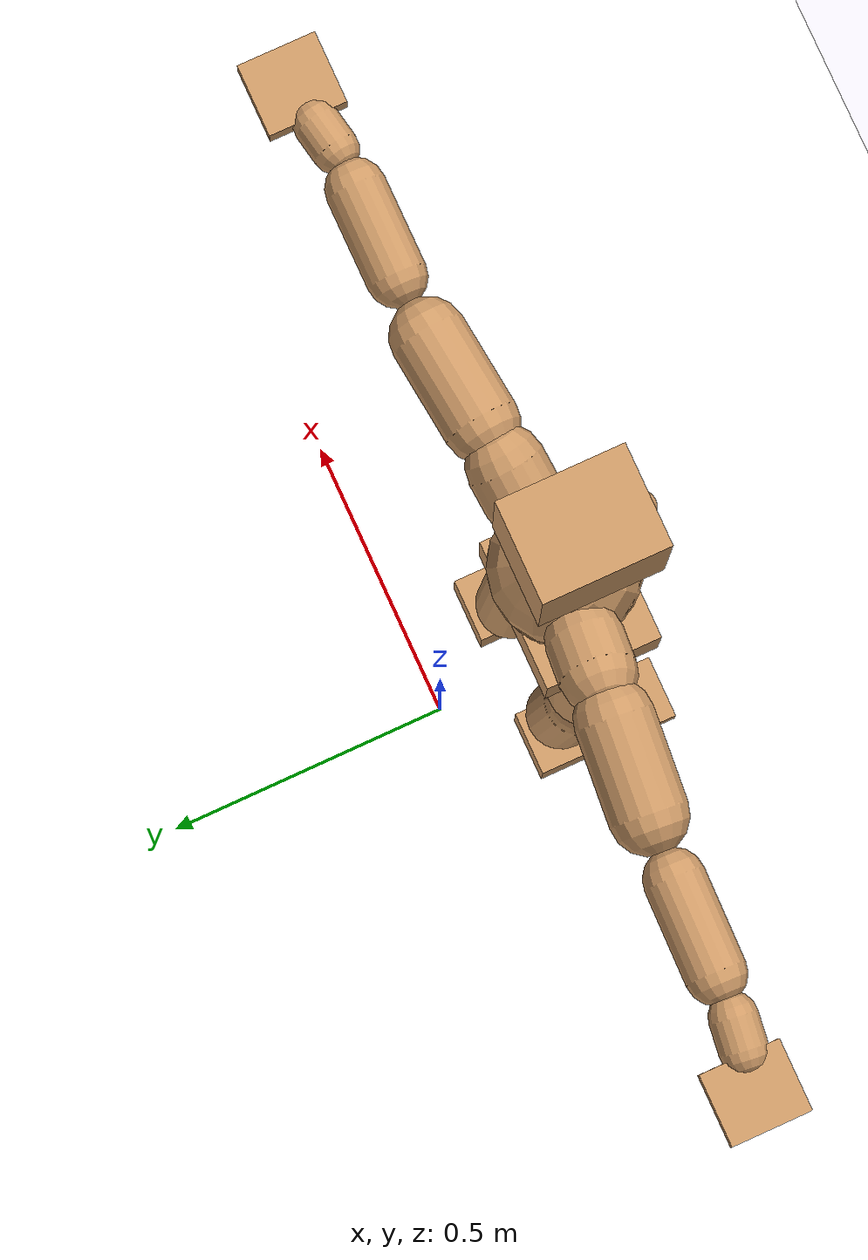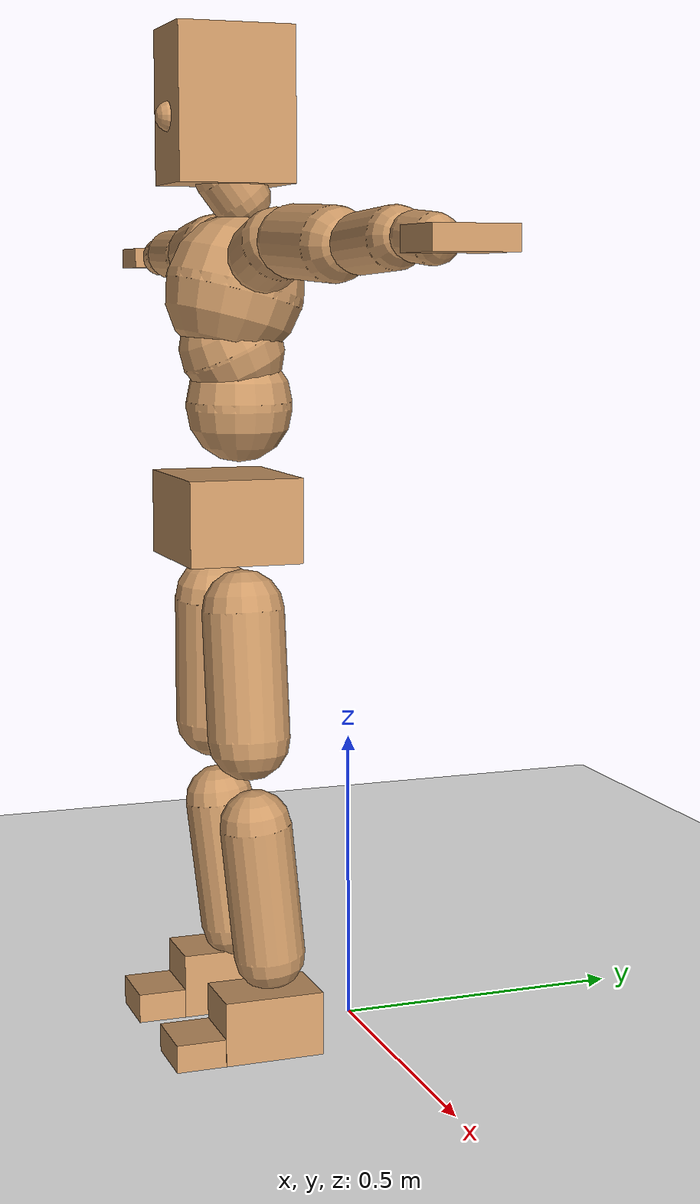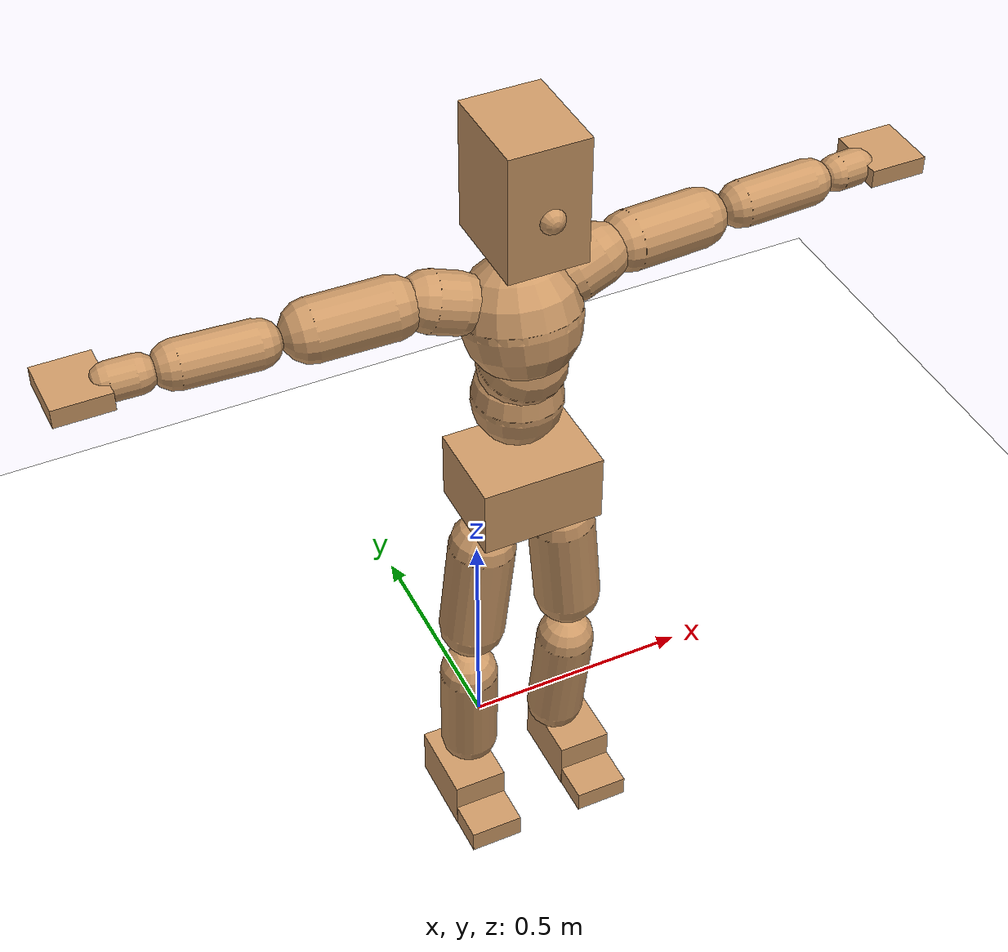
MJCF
<mujoco model="humanoid">
  <option integrator="implicitfast" />

  <visual>
    <global offwidth="1280" offheight="960" />
    <headlight active="1" ambient="0.34 0.34 0.34" diffuse="0.5 0.5 0.5" />
  </visual>

  <default>
    <joint damping="2" stiffness="2" armature="0.01" limited="true" solimplimit="0 .99 .01" />
    <geom condim="1" friction="0.7 0.005 0.0001" solimp=".99 .99 .003" solref="0.015 1" margin="0.001" rgba="0.8 0.6 .4 1" />
    <default class="smplcontact">
      <geom condim="3" friction="1. 0.005 0.0001" solref="0.015 1" solimp="0.98 0.98 0.001" priority="1" />
    </default>
    <default class="stiff_medium">
      <joint stiffness="10" />
    </default>
    <default class="stiff_medium_higher">
      <joint stiffness="50" />
    </default>
    <default class="stiff_high">
      <joint stiffness="100" />
    </default>
  </default>

  <asset>
    <texture type="skybox" builtin="gradient" rgb1="0.99 0.99 0.99" rgb2="0.608 0.828 0.892" width="100" />
    <texture builtin="flat" height="1278" mark="cross" markrgb="1 1 1" name="texgeom" random="0.01" rgb1="0.8 0.6 0.4" rgb2="0.8 0.6 0.4" type="cube" width="127" />
    <texture name="texplane" type="2d" builtin="checker" markrgb="1 1 1" rgb1="0.756 0.772 0.76" rgb2="0.6 0.6 0.6" width="100" height="100" />
    <material name="MatPlane" reflectance="0.5" texture="texplane" texrepeat="1 1" texuniform="true" />
    <material name="geom" texture="texgeom" texuniform="true" />
  </asset>

  <worldbody>
    <light name="tracking_light" pos="0 0 7" dir="0 0 -1" directional="true" cutoff="100" exponent="1" diffuse="1 1 1" specular="0.1 0.1 0.1" mode="trackcom" />
    <camera name="back" pos="0 3 2.4" xyaxes="-1 0 0 0 -1 2" mode="trackcom" />
    <camera name="side" pos="-3 0 2.4" xyaxes="0 -1 0 1 0 2" mode="trackcom" />
    <camera name="front_side" pos="-2.8 -2.8 0.8" xyaxes="0.5 -0.5 0 0.1 0.1 1" mode="trackcom" />
    <geom condim="3" name="floor" pos="0 0 0" rgba="1 1 1 1" size="100 100 .2" type="plane" material="MatPlane" />
    <body name="Pelvis" pos="-0.0018 -0.2233 0.907381" euler="90 0 0">
      <site name="Pelvis" size="0.01" />
      <freejoint name="Pelvis" />
      <geom type="box" pos="0 -0.0119134 -0.0063646" size="0.123705 0.0710864 0.0960476" quat="1.0000 0.0000 0.0000 0.0000" density="3165.830099" name="Pelvis" />
      <body name="L_Hip" pos="0.0804254 -0.0899903 -0.00786896">
        <joint name="L_Hip_x" type="hinge" pos="0 0 0" axis="1 0 0" stiffness="10" range="-160.0 22.92" class="stiff_medium" damping="15" />
        <joint name="L_Hip_y" type="hinge" pos="0 0 0" axis="0 1 0" stiffness="10" range="-70.0 70.0" class="stiff_medium" damping="10" />
        <joint name="L_Hip_z" type="hinge" pos="0 0 0" axis="0 0 1" stiffness="10" range="-28.65 90.0" class="stiff_medium" damping="10" />
        <geom type="capsule" density="2040.816327" fromto="0.00657484 -0.0713337 -0.000856138 0.026073 -0.285528 -0.00342419" size="0.068757" name="L_Hip" />
        <body name="L_Knee" pos="0.0326479 -0.356862 -0.00428033">
          <joint name="L_Knee_x" type="hinge" pos="0 0 0" axis="1 0 0" range="-5.16 171.89" damping="8" />
          <joint name="L_Knee_y" type="hinge" pos="0 0 0" axis="0 1 0" range="-4.58 6.88" damping="8" />
          <joint name="L_Knee_z" type="hinge" pos="0 0 0" axis="0 0 1" range="-6.88 4.58" damping="8" />
          <geom type="capsule" density="1234.567901" fromto="-0.00256254 -0.0757114 -0.00826387 -0.0103618 -0.302841 -0.0332786" size="0.0604838" name="L_Knee" />
          <body name="L_Ankle" pos="-0.0129243 -0.378553 -0.0415425">
            <joint name="L_Ankle_x" type="hinge" pos="0 0 0" axis="1 0 0" range="-45.84 45.84" class="stiff_medium" damping="6" />
            <joint name="L_Ankle_y" type="hinge" pos="0 0 0" axis="0 1 0" range="-74.48 22.92" class="stiff_medium" damping="3" />
            <joint name="L_Ankle_z" type="hinge" pos="0 0 0" axis="0 0 1" range="-4.58 4.58" class="stiff_medium" damping="6" />
            <geom type="box" pos="0.0269628 -0.0276571 0.0239458" size="0.0558928 0.0536941 0.0841073" quat="1.0000 0.0000 0.0000 0.0000" density="449.071558" name="L_Ankle" class="smplcontact" />
            <body name="L_Toe" pos="0.0305501 -0.0645718 0.118047">
              <joint name="L_Toe_x" type="hinge" pos="0 0 0" axis="1 0 0" range="-91.67 22.92" />
              <joint name="L_Toe_y" type="hinge" pos="0 0 0" axis="0 1 0" range="-4.58 4.58" />
              <joint name="L_Toe_z" type="hinge" pos="0 0 0" axis="0 0 1" range="-4.58 4.58" />
              <geom type="box" pos="-0.0034716 0.0063646 0.0245395" size="0.0553142 0.023144 0.0490791" quat="1.0000 0.0000 0.0000 0.0000" density="423.206892" name="L_Toe" class="smplcontact" />
            </body>
          </body>
        </body>
      </body>
      <body name="R_Hip" pos="-0.0783424 -0.0891041 -0.00497596">
        <joint name="R_Hip_x" type="hinge" pos="0 0 0" axis="1 0 0" stiffness="10" range="-160.0 22.92" class="stiff_medium" damping="15" />
        <joint name="R_Hip_y" type="hinge" pos="0 0 0" axis="0 1 0" stiffness="10" range="-70.0 70.0" class="stiff_medium" damping="10" />
        <joint name="R_Hip_z" type="hinge" pos="0 0 0" axis="0 0 1" stiffness="10" range="-90.0 28.65" class="stiff_medium" damping="10" />
        <geom type="capsule" density="2040.816327" fromto="-0.00733526 -0.0727602 -0.0017177 -0.0291161 -0.29114 -0.00675869" size="0.0677508" name="R_Hip" />
        <body name="R_Knee" pos="-0.0364514 -0.3639 -0.00847638">
          <joint name="R_Knee_x" type="hinge" pos="0 0 0" axis="1 0 0" range="-5.16 171.89" damping="8" />
          <joint name="R_Knee_y" type="hinge" pos="0 0 0" axis="0 1 0" range="-6.88 4.58" damping="8" />
          <joint name="R_Knee_z" type="hinge" pos="0 0 0" axis="0 0 1" range="-4.58 6.88" damping="8" />
          <geom type="capsule" density="1234.567901" fromto="0.00305446 -0.0758036 -0.00809498 0.0119951 -0.303124 -0.0321586" size="0.0604838" name="R_Knee" />
          <body name="R_Ankle" pos="0.0150496 -0.378927 -0.0402536">
            <joint name="R_Ankle_x" type="hinge" pos="0 0 0" axis="1 0 0" range="-45.84 45.84" class="stiff_medium" damping="6" />
            <joint name="R_Ankle_y" type="hinge" pos="0 0 0" axis="0 1 0" range="-22.92 74.48" class="stiff_medium" damping="3" />
            <joint name="R_Ankle_z" type="hinge" pos="0 0 0" axis="0 0 1" range="-4.58 4.58" class="stiff_medium" damping="6" />
            <geom type="box" pos="-0.0245326 -0.0201353 0.0253311" size="0.0558928 0.0553142 0.0855916" quat="1.0000 0.0000 0.0000 0.0000" density="434.700981" name="R_Ankle" class="smplcontact" />
            <body name="R_Toe" pos="-0.0293929 -0.0556613 0.122005">
              <joint name="R_Toe_x" type="hinge" pos="0 0 0" axis="1 0 0" range="-91.67 22.92" />
              <joint name="R_Toe_y" type="hinge" pos="0 0 0" axis="0 1 0" range="-4.58 4.58" />
              <joint name="R_Toe_z" type="hinge" pos="0 0 0" axis="0 0 1" range="-4.58 4.58" />
              <geom type="box" pos="0.00486024 0.0052074 0.0224616" size="0.0554299 0.0249955 0.0487822" quat="1.0000 0.0000 0.0000 0.0000" density="407.384095" name="R_Toe" class="smplcontact" />
            </body>
          </body>
        </body>
      </body>
      <body name="Torso" pos="-0.002893 0.107319 -0.0308972">
        <joint name="Torso_x" type="hinge" pos="0 0 0" axis="1 0 0" range="-25.78 57.3" class="stiff_medium" damping="15" />
        <joint name="Torso_y" type="hinge" pos="0 0 0" axis="0 1 0" range="-57.3 57.3" class="stiff_high" damping="20" />
        <joint name="Torso_z" type="hinge" pos="0 0 0" axis="0 0 1" range="-34.38 34.38" class="stiff_high" damping="20" />
        <geom type="capsule" density="2040.816327" fromto="0.0025105 0.0600102 0.0005021 0.00300402 0.0733352 0.000600804" size="0.0892194" name="Torso" />
        <body name="Spine" pos="0.00551388 0.133444 0.00110278">
          <joint name="Spine_x" type="hinge" pos="0 0 0" axis="1 0 0" stiffness="10" range="-25.78 57.3" class="stiff_medium" damping="15" />
          <joint name="Spine_y" type="hinge" pos="0 0 0" axis="0 1 0" stiffness="10" range="-57.3 57.3" class="stiff_high" damping="8" />
          <joint name="Spine_z" type="hinge" pos="0 0 0" axis="0 0 1" stiffness="20" range="-34.38 34.38" class="stiff_high" damping="12" />
          <geom type="capsule" density="2040.816327" fromto="0.000734723 0.0235097 0.0112134 0.000833427 0.028741 0.0137797" size="0.0875951" name="Spine" />
          <body name="Chest" pos="0.00156815 0.0522507 0.0249932">
            <joint name="Chest_x" type="hinge" pos="0 0 0" axis="1 0 0" stiffness="10" range="-25.78 57.3" class="stiff_medium" damping="15" />
            <joint name="Chest_y" type="hinge" pos="0 0 0" axis="0 1 0" stiffness="10" range="-57.3 57.3" class="stiff_high" damping="8" />
            <joint name="Chest_z" type="hinge" pos="0 0 0" axis="0 0 1" stiffness="20" range="-34.38 34.38" class="stiff_high" damping="12" />
            <geom type="capsule" density="2040.816327" fromto="-0.000966054 0.0673286 -0.0170246 -0.00106476 0.0822329 -0.020874" size="0.116252" name="Chest" />
            <body name="Neck" pos="-0.00300668 0.211643 -0.0403394">
              <joint name="Neck_x" type="hinge" pos="0 0 0" axis="1 0 0" range="-28.65 57.3" class="stiff_medium_higher" damping="10" />
              <joint name="Neck_y" type="hinge" pos="0 0 0" axis="0 1 0" range="-40.11 40.11" class="stiff_medium_higher" damping="10" />
              <joint name="Neck_z" type="hinge" pos="0 0 0" axis="0 0 1" range="-40.11 40.11" class="stiff_medium_higher" damping="10" />
              <geom type="capsule" density="1000" fromto="0.000983514 0.012861 0.0101956 0.00405096 0.0514514 0.0406722" size="0.0507068" name="Neck" />
              <body name="Head" pos="0.00515137 0.0643199 0.0507575">
                <joint name="Head_x" type="hinge" pos="0 0 0" axis="1 0 0" range="-28.65 57.3" class="stiff_medium_higher" damping="2" />
                <joint name="Head_y" type="hinge" pos="0 0 0" axis="0 1 0" range="-40.11 40.11" class="stiff_medium_higher" damping="2" />
                <joint name="Head_z" type="hinge" pos="0 0 0" axis="0 0 1" range="-40.11 40.11" class="stiff_medium_higher" damping="2" />
                <geom type="box" pos="-0.00544488 0.096616 -0.0150382" size="0.0785618 0.127277 0.0985264" quat="1.0000 0.0000 0.0000 0.0000" density="1018.069894" name="Head" />
                <geom type="capsule" name="nose" size="0.025928 0.012964" pos="0 0.0772046 0.06482" quat="1 0 0 0" mass="0" contype="0" conaffinity="0" />
              </body>
            </body>
            <body name="L_Thorax" pos="0.0915635 0.120096 -0.0341131">
              <joint name="L_Thorax_x" type="hinge" pos="0 0 0" axis="1 0 0" range="-10.89 4.58" class="stiff_medium_higher" damping="20" />
              <joint name="L_Thorax_y" type="hinge" pos="0 0 0" axis="0 1 0" range="-28.65 17.19" class="stiff_medium_higher" damping="20" />
              <joint name="L_Thorax_z" type="hinge" pos="0 0 0" axis="0 0 1" range="-31.51 40.11" class="stiff_medium_higher" damping="20" />
              <geom type="capsule" density="1000" fromto="0.017872 0.00599005 -0.0017733 0.0714894 0.0239607 -0.00697792" size="0.060139" name="L_Thorax" />
              <body name="L_Shoulder" pos="0.0893613 0.0299508 -0.00875122">
                <joint name="L_Shoulder_x" type="hinge" pos="0 0 0" axis="1 0 0" range="-97.4 97.4" class="stiff_medium" damping="6" />
                <joint name="L_Shoulder_y" type="hinge" pos="0 0 0" axis="0 1 0" range="-108.86 80.21" class="stiff_medium" damping="6" />
                <joint name="L_Shoulder_z" type="hinge" pos="0 0 0" axis="0 0 1" range="-97.4 85.94" class="stiff_medium" damping="6" />
                <geom type="capsule" density="1000" fromto="0.0501236 -0.00252258 -0.00531234 0.200593 -0.00986254 -0.0212478" size="0.058695" name="L_Shoulder" />
                <body name="L_Elbow" pos="0.250716 -0.0123851 -0.0265601">
                  <joint name="L_Elbow_x" type="hinge" pos="0 0 0" axis="1 0 0" range="-17.19 4.58" damping="5" />
                  <joint name="L_Elbow_y" type="hinge" pos="0 0 0" axis="0 1 0" range="-180.0 17.19" damping="5" />
                  <joint name="L_Elbow_z" type="hinge" pos="0 0 0" axis="0 0 1" range="-100.84 4.58" damping="5" />
                  <geom type="capsule" density="1000" fromto="0.0480961 0.00173882 -0.000187559 0.192577 0.00695405 -0.000863608" size="0.0459797" name="L_Elbow" />
                  <body name="L_Wrist" pos="0.240673 0.00869287 -0.0011647">
                    <joint name="L_Wrist_x" type="hinge" pos="0 0 0" axis="1 0 0" range="-180.0 22.92" />
                    <joint name="L_Wrist_y" type="hinge" pos="0 0 0" axis="0 1 0" range="-17.19 17.19" />
                    <joint name="L_Wrist_z" type="hinge" pos="0 0 0" axis="0 0 1" range="-22.92 22.92" />
                    <geom type="capsule" density="1000" fromto="0.0162257 -0.00153966 -0.00289745 0.0649012 -0.006272 -0.0115895" size="0.0361025" name="L_Wrist" class="smplcontact" />
                    <body name="L_Hand" pos="0.0811282 -0.00792531 -0.0143737">
                      <joint name="L_Hand_x" type="hinge" pos="0 0 0" axis="1 0 0" range="-17.19 17.19" />
                      <joint name="L_Hand_y" type="hinge" pos="0 0 0" axis="0 1 0" range="-51.57 51.57" />
                      <joint name="L_Hand_z" type="hinge" pos="0 0 0" axis="0 0 1" range="-91.67 91.67" />
                      <geom type="box" pos="0.0485396 0.0011572 -0.00671176" size="0.0575977 0.0182838 0.0622574" quat="1.0000 0.0000 0.0000 0.0000" density="400.552564" name="L_Hand" class="smplcontact" />
                    </body>
                  </body>
                </body>
              </body>
            </body>
            <body name="R_Thorax" pos="-0.0947653 0.116841 -0.0393623">
              <joint name="R_Thorax_x" type="hinge" pos="0 0 0" axis="1 0 0" range="-10.89 4.58" class="stiff_medium_higher" damping="20" />
              <joint name="R_Thorax_y" type="hinge" pos="0 0 0" axis="0 1 0" range="-17.19 28.65" class="stiff_medium_higher" damping="20" />
              <joint name="R_Thorax_z" type="hinge" pos="0 0 0" axis="0 0 1" range="-40.11 31.51" class="stiff_medium_higher" damping="20" />
              <geom type="capsule" density="1000" fromto="-0.018855 0.00638319 -0.00176191 -0.0754184 0.0255323 -0.00716293" size="0.0589847" name="R_Thorax" />
              <body name="R_Shoulder" pos="-0.0942681 0.0320291 -0.00892434">
                <joint name="R_Shoulder_x" type="hinge" pos="0 0 0" axis="1 0 0" range="-97.4 97.4" class="stiff_medium" damping="6" />
                <joint name="R_Shoulder_y" type="hinge" pos="0 0 0" axis="0 1 0" range="-80.21 108.86" class="stiff_medium" damping="6" />
                <joint name="R_Shoulder_z" type="hinge" pos="0 0 0" axis="0 0 1" range="-85.94 97.4" class="stiff_medium" damping="6" />
                <geom type="capsule" density="1000" fromto="-0.0489644 -0.00261381 -0.0041594 -0.196053 -0.0103401 -0.0165214" size="0.0602844" name="R_Shoulder" />
                <body name="R_Elbow" pos="-0.245019 -0.0128404 -0.0206809">
                  <joint name="R_Elbow_x" type="hinge" pos="0 0 0" axis="1 0 0" range="-17.19 4.58" damping="5" />
                  <joint name="R_Elbow_y" type="hinge" pos="0 0 0" axis="0 1 0" range="-17.19 180.0" damping="5" />
                  <joint name="R_Elbow_z" type="hinge" pos="0 0 0" axis="0 0 1" range="-4.58 100.84" damping="5" />
                  <geom type="capsule" density="1000" fromto="-0.0493512 0.00155621 -0.00106211 -0.197213 0.00599881 -0.0042492" size="0.0463202" name="R_Elbow" />
                  <body name="R_Wrist" pos="-0.246564 0.00755501 -0.00542483">
                    <joint name="R_Wrist_x" type="hinge" pos="0 0 0" axis="1 0 0" range="-180.0 22.92" />
                    <joint name="R_Wrist_y" type="hinge" pos="0 0 0" axis="0 1 0" range="-17.19 17.19" />
                    <joint name="R_Wrist_z" type="hinge" pos="0 0 0" axis="0 0 1" range="-22.92 22.92" />
                    <geom type="capsule" density="1000" fromto="-0.0163214 -0.00115367 -0.00203444 -0.0653832 -0.00472707 -0.0080223" size="0.0370108" name="R_Wrist" class="smplcontact" />
                    <body name="R_Hand" pos="-0.0817066 -0.0058809 -0.00994346">
                      <joint name="R_Hand_x" type="hinge" pos="0 0 0" axis="1 0 0" range="-17.19 17.19" />
                      <joint name="R_Hand_y" type="hinge" pos="0 0 0" axis="0 1 0" range="-51.57 51.57" />
                      <joint name="R_Hand_z" type="hinge" pos="0 0 0" axis="0 0 1" range="-91.67 91.67" />
                      <geom type="box" pos="-0.0454874 -0.00104148 -0.00914188" size="0.0560224 0.0189781 0.0631831" quat="1.0000 0.0000 0.0000 0.0000" density="403.679611" name="R_Hand" class="smplcontact" />
                    </body>
                  </body>
                </body>
              </body>
            </body>
          </body>
        </body>
      </body>
    </body>
  </worldbody>
  <actuator>
    <general name="L_Hip_x" joint="L_Hip_x" biastype="affine" gainprm="287.33006409732246" biasprm="-215.3247604770444 -180 -2.0" ctrllimited="true" ctrlrange="-1 1" forcerange="-360 360" />
    <general name="L_Hip_y" joint="L_Hip_y" biastype="affine" gainprm="219.9114857512855" biasprm="0.0 -180 -2.0" ctrllimited="true" ctrlrange="-1 1" forcerange="-360 360" />
    <general name="L_Hip_z" joint="L_Hip_z" biastype="affine" gainprm="186.3749841742145" biasprm="96.3683546488669 -180 -2.0" ctrllimited="true" ctrlrange="-1 1" forcerange="-360 360" />
    <general name="L_Knee_x" joint="L_Knee_x" biastype="affine" gainprm="278.10948965903646" biasprm="261.8988715665131 -180 -2.0" ctrllimited="true" ctrlrange="-1 1" forcerange="-360 360" />
    <general name="L_Knee_y" joint="L_Knee_y" biastype="affine" gainprm="18.001325905069514" biasprm="3.612831551628262 -180 -2.0" ctrllimited="true" ctrlrange="-1 1" forcerange="-360 360" />
    <general name="L_Knee_z" joint="L_Knee_z" biastype="affine" gainprm="18.001325905069514" biasprm="-3.612831551628262 -180 -2.0" ctrllimited="true" ctrlrange="-1 1" forcerange="-360 360" />
    <general name="L_Ankle_x" joint="L_Ankle_x" biastype="affine" gainprm="72.00530362027807" biasprm="0.0 -90 -2.0" ctrllimited="true" ctrlrange="-1 1" forcerange="-180 180" />
    <general name="L_Ankle_y" joint="L_Ankle_y" biastype="affine" gainprm="76.49778111491148" biasprm="-40.49512930477244 -90 -2.0" ctrllimited="true" ctrlrange="-1 1" forcerange="-180 180" />
    <general name="L_Ankle_z" joint="L_Ankle_z" biastype="affine" gainprm="7.1942471767206255" biasprm="0.0 -90 -2.0" ctrllimited="true" ctrlrange="-1 1" forcerange="-180 180" />
    <general name="L_Toe_x" joint="L_Toe_x" biastype="affine" gainprm="71.99902043497087" biasprm="-43.19689898685965 -72 -0.8" ctrllimited="true" ctrlrange="-1 1" forcerange="-144 144" />
    <general name="L_Toe_y" joint="L_Toe_y" biastype="affine" gainprm="5.755397741376501" biasprm="0.0 -72 -0.8" ctrllimited="true" ctrlrange="-1 1" forcerange="-144 144" />
    <general name="L_Toe_z" joint="L_Toe_z" biastype="affine" gainprm="5.755397741376501" biasprm="0.0 -72 -0.8" ctrllimited="true" ctrlrange="-1 1" forcerange="-144 144" />
    <general name="R_Hip_x" joint="R_Hip_x" biastype="affine" gainprm="287.33006409732246" biasprm="-215.3247604770444 -180 -2.0" ctrllimited="true" ctrlrange="-1 1" forcerange="-360 360" />
    <general name="R_Hip_y" joint="R_Hip_y" biastype="affine" gainprm="219.9114857512855" biasprm="0.0 -180 -2.0" ctrllimited="true" ctrlrange="-1 1" forcerange="-360 360" />
    <general name="R_Hip_z" joint="R_Hip_z" biastype="affine" gainprm="186.3749841742145" biasprm="-96.3683546488669 -180 -2.0" ctrllimited="true" ctrlrange="-1 1" forcerange="-360 360" />
    <general name="R_Knee_x" joint="R_Knee_x" biastype="affine" gainprm="278.10948965903646" biasprm="261.8988715665131 -180 -2.0" ctrllimited="true" ctrlrange="-1 1" forcerange="-360 360" />
    <general name="R_Knee_y" joint="R_Knee_y" biastype="affine" gainprm="18.001325905069514" biasprm="-3.612831551628262 -180 -2.0" ctrllimited="true" ctrlrange="-1 1" forcerange="-360 360" />
    <general name="R_Knee_z" joint="R_Knee_z" biastype="affine" gainprm="18.001325905069514" biasprm="3.612831551628262 -180 -2.0" ctrllimited="true" ctrlrange="-1 1" forcerange="-360 360" />
    <general name="R_Ankle_x" joint="R_Ankle_x" biastype="affine" gainprm="72.00530362027807" biasprm="0.0 -90 -2.0" ctrllimited="true" ctrlrange="-1 1" forcerange="-180 180" />
    <general name="R_Ankle_y" joint="R_Ankle_y" biastype="affine" gainprm="76.49778111491148" biasprm="40.49512930477244 -90 -2.0" ctrllimited="true" ctrlrange="-1 1" forcerange="-180 180" />
    <general name="R_Ankle_z" joint="R_Ankle_z" biastype="affine" gainprm="7.1942471767206255" biasprm="0.0 -90 -2.0" ctrllimited="true" ctrlrange="-1 1" forcerange="-180 180" />
    <general name="R_Toe_x" joint="R_Toe_x" biastype="affine" gainprm="71.99902043497087" biasprm="-43.19689898685965 -72 -0.8" ctrllimited="true" ctrlrange="-1 1" forcerange="-144 144" />
    <general name="R_Toe_y" joint="R_Toe_y" biastype="affine" gainprm="5.755397741376501" biasprm="0.0 -72 -0.8" ctrllimited="true" ctrlrange="-1 1" forcerange="-144 144" />
    <general name="R_Toe_z" joint="R_Toe_z" biastype="affine" gainprm="5.755397741376501" biasprm="0.0 -72 -0.8" ctrllimited="true" ctrlrange="-1 1" forcerange="-144 144" />
    <general name="Torso_x" joint="Torso_x" biastype="affine" gainprm="174.00234510682668" biasprm="66.0153336274335 -240 -4.0" ctrllimited="true" ctrlrange="-1 1" forcerange="-360 360" />
    <general name="Torso_y" joint="Torso_y" biastype="affine" gainprm="240.0176787342602" biasprm="0.0 -240 -4.0" ctrllimited="true" ctrlrange="-1 1" forcerange="-360 360" />
    <general name="Torso_z" joint="Torso_z" biastype="affine" gainprm="144.01060724055614" biasprm="0.0 -240 -4.0" ctrllimited="true" ctrlrange="-1 1" forcerange="-360 360" />
    <general name="Spine_x" joint="Spine_x" biastype="affine" gainprm="174.00234510682668" biasprm="66.0153336274335 -240 -4.0" ctrllimited="true" ctrlrange="-1 1" forcerange="-360 360" />
    <general name="Spine_y" joint="Spine_y" biastype="affine" gainprm="240.0176787342602" biasprm="0.0 -240 -4.0" ctrllimited="true" ctrlrange="-1 1" forcerange="-360 360" />
    <general name="Spine_z" joint="Spine_z" biastype="affine" gainprm="144.01060724055614" biasprm="0.0 -240 -4.0" ctrllimited="true" ctrlrange="-1 1" forcerange="-360 360" />
    <general name="Chest_x" joint="Chest_x" biastype="affine" gainprm="174.00234510682668" biasprm="66.0153336274335 -240 -4.0" ctrllimited="true" ctrlrange="-1 1" forcerange="-360 360" />
    <general name="Chest_y" joint="Chest_y" biastype="affine" gainprm="240.0176787342602" biasprm="0.0 -240 -4.0" ctrllimited="true" ctrlrange="-1 1" forcerange="-360 360" />
    <general name="Chest_z" joint="Chest_z" biastype="affine" gainprm="144.01060724055614" biasprm="0.0 -240 -4.0" ctrllimited="true" ctrlrange="-1 1" forcerange="-360 360" />
    <general name="Neck_x" joint="Neck_x" biastype="affine" gainprm="27.00198885760427" biasprm="9.000662952534757 -36 -0.8" ctrllimited="true" ctrlrange="-1 1" forcerange="-72 72" />
    <general name="Neck_y" joint="Neck_y" biastype="affine" gainprm="25.20185626709732" biasprm="0.0 -36 -0.8" ctrllimited="true" ctrlrange="-1 1" forcerange="-72 72" />
    <general name="Neck_z" joint="Neck_z" biastype="affine" gainprm="25.20185626709732" biasprm="0.0 -36 -0.8" ctrllimited="true" ctrlrange="-1 1" forcerange="-72 72" />
    <general name="Head_x" joint="Head_x" biastype="affine" gainprm="18.001325905069514" biasprm="6.000441968356505 -24 -0.8" ctrllimited="true" ctrlrange="-1 1" forcerange="-48 48" />
    <general name="Head_y" joint="Head_y" biastype="affine" gainprm="16.801237511398213" biasprm="0.0 -24 -0.8" ctrllimited="true" ctrlrange="-1 1" forcerange="-48 48" />
    <general name="Head_z" joint="Head_z" biastype="affine" gainprm="16.801237511398213" biasprm="0.0 -24 -0.8" ctrllimited="true" ctrlrange="-1 1" forcerange="-48 48" />
    <general name="L_Thorax_x" joint="L_Thorax_x" biastype="affine" gainprm="16.200146117011364" biasprm="-6.6078165480505335 -120 -1.6" ctrllimited="true" ctrlrange="-1 1" forcerange="-240 240" />
    <general name="L_Thorax_y" joint="L_Thorax_y" biastype="affine" gainprm="48.00353574685204" biasprm="-12.00088393671301 -120 -1.6" ctrllimited="true" ctrlrange="-1 1" forcerange="-240 240" />
    <general name="L_Thorax_z" joint="L_Thorax_z" biastype="affine" gainprm="75.00028861670033" biasprm="9.00589894029074 -120 -1.6" ctrllimited="true" ctrlrange="-1 1" forcerange="-240 240" />
    <general name="L_Shoulder_x" joint="L_Shoulder_x" biastype="affine" gainprm="81.5976331892389" biasprm="0.0 -48 -1.6" ctrllimited="true" ctrlrange="-1 1" forcerange="-96 96" />
    <general name="L_Shoulder_y" joint="L_Shoulder_y" biastype="affine" gainprm="79.19745640189629" biasprm="-12.00088393671301 -48 -1.6" ctrllimited="true" ctrlrange="-1 1" forcerange="-96 96" />
    <general name="L_Shoulder_z" joint="L_Shoulder_z" biastype="affine" gainprm="76.79727961455369" biasprm="-4.800353574685214 -48 -1.6" ctrllimited="true" ctrlrange="-1 1" forcerange="-96 96" />
    <general name="L_Elbow_x" joint="L_Elbow_x" biastype="affine" gainprm="13.67849441372996" biasprm="-7.923096672353461 -72 -0.8" ctrllimited="true" ctrlrange="-1 1" forcerange="-144 144" />
    <general name="L_Elbow_y" joint="L_Elbow_y" biastype="affine" gainprm="123.89813107227425" biasprm="-102.29653998619085 -72 -0.8" ctrllimited="true" ctrlrange="-1 1" forcerange="-144 144" />
    <general name="L_Elbow_z" joint="L_Elbow_z" biastype="affine" gainprm="66.23733950828719" biasprm="-60.4819417669107 -72 -0.8" ctrllimited="true" ctrlrange="-1 1" forcerange="-144 144" />
    <general name="L_Wrist_x" joint="L_Wrist_x" biastype="affine" gainprm="21.24973270888136" biasprm="-16.449379134196157 -12 -0.8" ctrllimited="true" ctrlrange="-1 1" forcerange="-24 24" />
    <general name="L_Wrist_y" joint="L_Wrist_y" biastype="affine" gainprm="3.6002651810139037" biasprm="0.0 -12 -0.8" ctrllimited="true" ctrlrange="-1 1" forcerange="-24 24" />
    <general name="L_Wrist_z" joint="L_Wrist_z" biastype="affine" gainprm="4.800353574685205" biasprm="0.0 -12 -0.8" ctrllimited="true" ctrlrange="-1 1" forcerange="-24 24" />
    <general name="L_Hand_x" joint="L_Hand_x" biastype="affine" gainprm="3.6002651810139037" biasprm="0.0 -12 -0.8" ctrllimited="true" ctrlrange="-1 1" forcerange="-24 24" />
    <general name="L_Hand_y" joint="L_Hand_y" biastype="affine" gainprm="10.800795543041708" biasprm="0.0 -12 -0.8" ctrllimited="true" ctrlrange="-1 1" forcerange="-24 24" />
    <general name="L_Hand_z" joint="L_Hand_z" biastype="affine" gainprm="19.199319903638422" biasprm="0.0 -12 -0.8" ctrllimited="true" ctrlrange="-1 1" forcerange="-24 24" />
    <general name="R_Thorax_x" joint="R_Thorax_x" biastype="affine" gainprm="16.200146117011364" biasprm="-6.6078165480505335 -120 -1.6" ctrllimited="true" ctrlrange="-1 1" forcerange="-240 240" />
    <general name="R_Thorax_y" joint="R_Thorax_y" biastype="affine" gainprm="48.00353574685204" biasprm="12.000883936713002 -120 -1.6" ctrllimited="true" ctrlrange="-1 1" forcerange="-240 240" />
    <general name="R_Thorax_z" joint="R_Thorax_z" biastype="affine" gainprm="75.00028861670033" biasprm="-9.00589894029074 -120 -1.6" ctrllimited="true" ctrlrange="-1 1" forcerange="-240 240" />
    <general name="R_Shoulder_x" joint="R_Shoulder_x" biastype="affine" gainprm="81.5976331892389" biasprm="0.0 -48 -1.6" ctrllimited="true" ctrlrange="-1 1" forcerange="-96 96" />
    <general name="R_Shoulder_y" joint="R_Shoulder_y" biastype="affine" gainprm="79.19745640189629" biasprm="12.00088393671301 -48 -1.6" ctrllimited="true" ctrlrange="-1 1" forcerange="-96 96" />
    <general name="R_Shoulder_z" joint="R_Shoulder_z" biastype="affine" gainprm="76.79727961455369" biasprm="4.800353574685204 -48 -1.6" ctrllimited="true" ctrlrange="-1 1" forcerange="-96 96" />
    <general name="R_Elbow_x" joint="R_Elbow_x" biastype="affine" gainprm="13.67849441372996" biasprm="-7.923096672353461 -72 -0.8" ctrllimited="true" ctrlrange="-1 1" forcerange="-144 144" />
    <general name="R_Elbow_y" joint="R_Elbow_y" biastype="affine" gainprm="123.89813107227425" biasprm="102.29653998619085 -72 -0.8" ctrllimited="true" ctrlrange="-1 1" forcerange="-144 144" />
    <general name="R_Elbow_z" joint="R_Elbow_z" biastype="affine" gainprm="66.23733950828719" biasprm="60.481941766910694 -72 -0.8" ctrllimited="true" ctrlrange="-1 1" forcerange="-144 144" />
    <general name="R_Wrist_x" joint="R_Wrist_x" biastype="affine" gainprm="21.24973270888136" biasprm="-16.449379134196157 -12 -0.8" ctrllimited="true" ctrlrange="-1 1" forcerange="-24 24" />
    <general name="R_Wrist_y" joint="R_Wrist_y" biastype="affine" gainprm="3.6002651810139037" biasprm="0.0 -12 -0.8" ctrllimited="true" ctrlrange="-1 1" forcerange="-24 24" />
    <general name="R_Wrist_z" joint="R_Wrist_z" biastype="affine" gainprm="4.800353574685205" biasprm="0.0 -12 -0.8" ctrllimited="true" ctrlrange="-1 1" forcerange="-24 24" />
    <general name="R_Hand_x" joint="R_Hand_x" biastype="affine" gainprm="3.6002651810139037" biasprm="0.0 -12 -0.8" ctrllimited="true" ctrlrange="-1 1" forcerange="-24 24" />
    <general name="R_Hand_y" joint="R_Hand_y" biastype="affine" gainprm="10.800795543041708" biasprm="0.0 -12 -0.8" ctrllimited="true" ctrlrange="-1 1" forcerange="-24 24" />
    <general name="R_Hand_z" joint="R_Hand_z" biastype="affine" gainprm="19.199319903638422" biasprm="0.0 -12 -0.8" ctrllimited="true" ctrlrange="-1 1" forcerange="-24 24" />
  </actuator>
  <contact>
    <exclude body1="Torso" body2="Chest" />
    <exclude body1="Head" body2="Chest" />
    <exclude body1="R_Knee" body2="R_Toe" />
    <exclude body1="R_Knee" body2="L_Ankle" />
    <exclude body1="R_Knee" body2="L_Toe" />
    <exclude body1="L_Knee" body2="L_Toe" />
    <exclude body1="L_Knee" body2="R_Ankle" />
    <exclude body1="L_Knee" body2="R_Toe" />
    <exclude body1="L_Shoulder" body2="Chest" />
    <exclude body1="R_Shoulder" body2="Chest" />
  </contact>
  <sensor>
    <framelinvel name="sensor_Pelvis_framelinvel" objtype="xbody" objname="Pelvis" />
    <framelinvel name="sensor_L_Hip_framelinvel" objtype="xbody" objname="L_Hip" />
    <framelinvel name="sensor_L_Knee_framelinvel" objtype="xbody" objname="L_Knee" />
    <framelinvel name="sensor_L_Ankle_framelinvel" objtype="xbody" objname="L_Ankle" />
    <framelinvel name="sensor_L_Toe_framelinvel" objtype="xbody" objname="L_Toe" />
    <framelinvel name="sensor_R_Hip_framelinvel" objtype="xbody" objname="R_Hip" />
    <framelinvel name="sensor_R_Knee_framelinvel" objtype="xbody" objname="R_Knee" />
    <framelinvel name="sensor_R_Ankle_framelinvel" objtype="xbody" objname="R_Ankle" />
    <framelinvel name="sensor_R_Toe_framelinvel" objtype="xbody" objname="R_Toe" />
    <framelinvel name="sensor_Torso_framelinvel" objtype="xbody" objname="Torso" />
    <framelinvel name="sensor_Spine_framelinvel" objtype="xbody" objname="Spine" />
    <framelinvel name="sensor_Chest_framelinvel" objtype="xbody" objname="Chest" />
    <framelinvel name="sensor_Neck_framelinvel" objtype="xbody" objname="Neck" />
    <framelinvel name="sensor_Head_framelinvel" objtype="xbody" objname="Head" />
    <framelinvel name="sensor_L_Thorax_framelinvel" objtype="xbody" objname="L_Thorax" />
    <framelinvel name="sensor_L_Shoulder_framelinvel" objtype="xbody" objname="L_Shoulder" />
    <framelinvel name="sensor_L_Elbow_framelinvel" objtype="xbody" objname="L_Elbow" />
    <framelinvel name="sensor_L_Wrist_framelinvel" objtype="xbody" objname="L_Wrist" />
    <framelinvel name="sensor_L_Hand_framelinvel" objtype="xbody" objname="L_Hand" />
    <framelinvel name="sensor_R_Thorax_framelinvel" objtype="xbody" objname="R_Thorax" />
    <framelinvel name="sensor_R_Shoulder_framelinvel" objtype="xbody" objname="R_Shoulder" />
    <framelinvel name="sensor_R_Elbow_framelinvel" objtype="xbody" objname="R_Elbow" />
    <framelinvel name="sensor_R_Wrist_framelinvel" objtype="xbody" objname="R_Wrist" />
    <framelinvel name="sensor_R_Hand_framelinvel" objtype="xbody" objname="R_Hand" />
    <frameangvel name="sensor_Pelvis_frameangvel" objtype="xbody" objname="Pelvis" />
    <frameangvel name="sensor_L_Hip_frameangvel" objtype="xbody" objname="L_Hip" />
    <frameangvel name="sensor_L_Knee_frameangvel" objtype="xbody" objname="L_Knee" />
    <frameangvel name="sensor_L_Ankle_frameangvel" objtype="xbody" objname="L_Ankle" />
    <frameangvel name="sensor_L_Toe_frameangvel" objtype="xbody" objname="L_Toe" />
    <frameangvel name="sensor_R_Hip_frameangvel" objtype="xbody" objname="R_Hip" />
    <frameangvel name="sensor_R_Knee_frameangvel" objtype="xbody" objname="R_Knee" />
    <frameangvel name="sensor_R_Ankle_frameangvel" objtype="xbody" objname="R_Ankle" />
    <frameangvel name="sensor_R_Toe_frameangvel" objtype="xbody" objname="R_Toe" />
    <frameangvel name="sensor_Torso_frameangvel" objtype="xbody" objname="Torso" />
    <frameangvel name="sensor_Spine_frameangvel" objtype="xbody" objname="Spine" />
    <frameangvel name="sensor_Chest_frameangvel" objtype="xbody" objname="Chest" />
    <frameangvel name="sensor_Neck_frameangvel" objtype="xbody" objname="Neck" />
    <frameangvel name="sensor_Head_frameangvel" objtype="xbody" objname="Head" />
    <frameangvel name="sensor_L_Thorax_frameangvel" objtype="xbody" objname="L_Thorax" />
    <frameangvel name="sensor_L_Shoulder_frameangvel" objtype="xbody" objname="L_Shoulder" />
    <frameangvel name="sensor_L_Elbow_frameangvel" objtype="xbody" objname="L_Elbow" />
    <frameangvel name="sensor_L_Wrist_frameangvel" objtype="xbody" objname="L_Wrist" />
    <frameangvel name="sensor_L_Hand_frameangvel" objtype="xbody" objname="L_Hand" />
    <frameangvel name="sensor_R_Thorax_frameangvel" objtype="xbody" objname="R_Thorax" />
    <frameangvel name="sensor_R_Shoulder_frameangvel" objtype="xbody" objname="R_Shoulder" />
    <frameangvel name="sensor_R_Elbow_frameangvel" objtype="xbody" objname="R_Elbow" />
    <frameangvel name="sensor_R_Wrist_frameangvel" objtype="xbody" objname="R_Wrist" />
    <frameangvel name="sensor_R_Hand_frameangvel" objtype="xbody" objname="R_Hand" />
    <subtreelinvel name="Chest_subtreelinvel" body="Chest" />
    <gyro name="Pelvis_gyro" site="Pelvis" />
  </sensor>
</mujoco>
